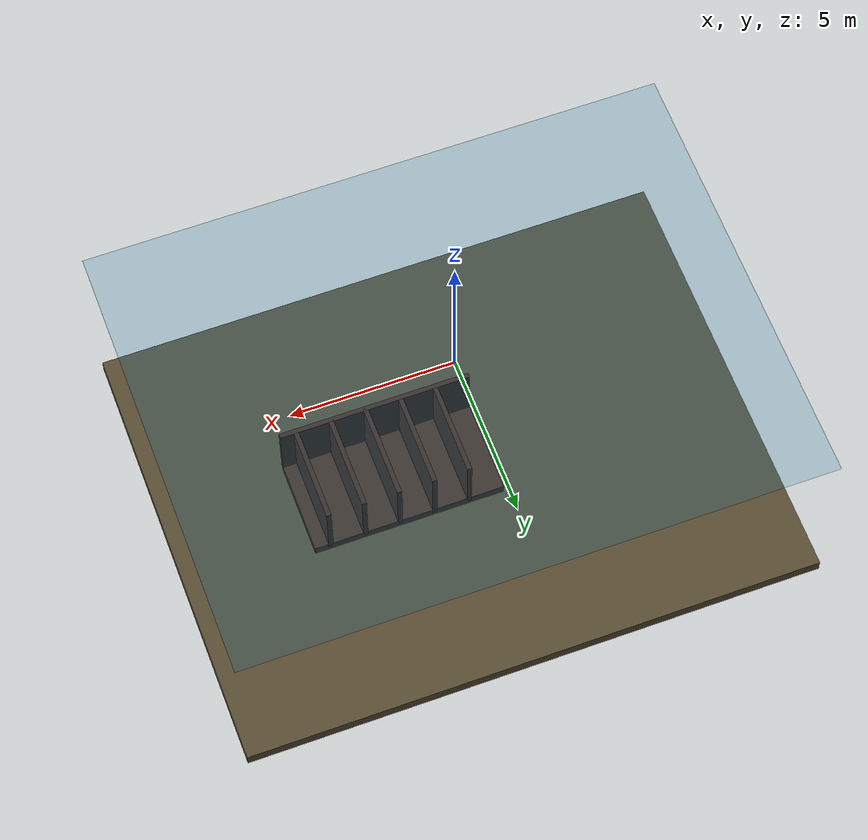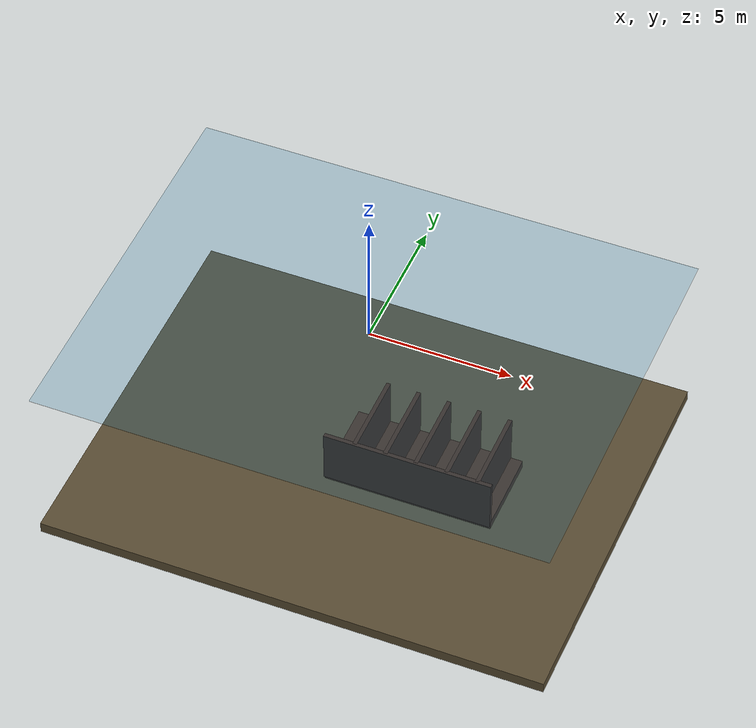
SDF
<?xml version='1.0' encoding='utf-8'?>
<sdf version="1.7">
  <world name="marine_wreck">
    <physics name="marine_physics" type="ode">
      <max_step_size>0.001</max_step_size>
      <real_time_factor>1</real_time_factor>
    </physics>
    <gravity>0 0 -9.81</gravity>
    <plugin filename="ignition-gazebo-physics-system" name="ignition::gazebo::systems::Physics" />
    <plugin filename="ignition-gazebo-user-commands-system" name="ignition::gazebo::systems::UserCommands" />
    <plugin filename="ignition-gazebo-scene-broadcaster-system" name="ignition::gazebo::systems::SceneBroadcaster" />
    <plugin filename="ignition-gazebo-sensors-system" name="ignition::gazebo::systems::Sensors">
      <render_engine>ogre2</render_engine>
    </plugin>
    <plugin filename="ignition-gazebo-imu-system" name="ignition::gazebo::systems::Imu" />
    <plugin filename="ignition-gazebo-buoyancy-system" name="ignition::gazebo::systems::Buoyancy">
      <graded_buoyancy>
        <default_density>1025</default_density>
        <density_change>
          <above_depth>0</above_depth>
          <density>1.225</density>
        </density_change>
      </graded_buoyancy>
      <enable>lab_rov</enable>
    </plugin>
    <!-- Fortress uses the explicit marine_sensors.py DVL/pressure/sonar model. -->
    <scene>
      <ambient>.3 .55 .6 1</ambient>
      <background>.05 .18 .25 1</background>
    </scene>
    <light name="sun" type="directional">
      <pose>0 0 10 0 0 0</pose>
      <diffuse>.8 .9 1 1</diffuse>
      <direction>-.3 .2 -1</direction>
    </light>
    <model name="seafloor">
      <static>true</static>
      <pose>0 0 -6.2 0 0 0</pose>
      <link name="link">
        <visual name="visual">
          <geometry>
            <box>
              <size>18 14 0.4</size>
            </box>
          </geometry>
          <material>
            <ambient>.35 .3 .2 1</ambient>
            <diffuse>.35 .3 .2 1</diffuse>
          </material>
        </visual>
        <collision name="collision">
          <geometry>
            <box>
              <size>18 14 0.4</size>
            </box>
          </geometry>
        </collision>
      </link>
    </model>
    <model name="water_surface">
      <static>true</static>
      <pose>0 0 0 0 0 0</pose>
      <link name="link">
        <visual name="visual">
          <geometry>
            <box>
              <size>18 14 0.015</size>
            </box>
          </geometry>
          <material>
            <ambient>0 .4 .6 .18</ambient>
            <diffuse>0 .4 .6 .18</diffuse>
          </material>
        </visual>
      </link>
    </model>
    <model name="wreck_keel">
      <static>true</static>
      <pose>2 0 -5.8 0 0 0</pose>
      <link name="link">
        <visual name="visual">
          <geometry>
            <box>
              <size>6 3 0.3</size>
            </box>
          </geometry>
          <material>
            <ambient>.3 .17 .1 1</ambient>
            <diffuse>.3 .17 .1 1</diffuse>
          </material>
        </visual>
        <collision name="collision">
          <geometry>
            <box>
              <size>6 3 0.3</size>
            </box>
          </geometry>
        </collision>
      </link>
    </model>
    <model name="wreck_rib_0">
      <static>true</static>
      <pose>0.1 0 -4.8 0 0 0</pose>
      <link name="link">
        <visual name="visual">
          <geometry>
            <box>
              <size>0.15 3 2</size>
            </box>
          </geometry>
          <material>
            <ambient>.28 .15 .09 1</ambient>
            <diffuse>.28 .15 .09 1</diffuse>
          </material>
        </visual>
        <collision name="collision">
          <geometry>
            <box>
              <size>0.15 3 2</size>
            </box>
          </geometry>
        </collision>
      </link>
    </model>
    <model name="wreck_rib_1">
      <static>true</static>
      <pose>1.2000000000000002 0 -4.8 0 0 0</pose>
      <link name="link">
        <visual name="visual">
          <geometry>
            <box>
              <size>0.15 3 2</size>
            </box>
          </geometry>
          <material>
            <ambient>.28 .15 .09 1</ambient>
            <diffuse>.28 .15 .09 1</diffuse>
          </material>
        </visual>
        <collision name="collision">
          <geometry>
            <box>
              <size>0.15 3 2</size>
            </box>
          </geometry>
        </collision>
      </link>
    </model>
    <model name="wreck_rib_2">
      <static>true</static>
      <pose>2.3000000000000003 0 -4.8 0 0 0</pose>
      <link name="link">
        <visual name="visual">
          <geometry>
            <box>
              <size>0.15 3 2</size>
            </box>
          </geometry>
          <material>
            <ambient>.28 .15 .09 1</ambient>
            <diffuse>.28 .15 .09 1</diffuse>
          </material>
        </visual>
        <collision name="collision">
          <geometry>
            <box>
              <size>0.15 3 2</size>
            </box>
          </geometry>
        </collision>
      </link>
    </model>
    <model name="wreck_rib_3">
      <static>true</static>
      <pose>3.4000000000000004 0 -4.8 0 0 0</pose>
      <link name="link">
        <visual name="visual">
          <geometry>
            <box>
              <size>0.15 3 2</size>
            </box>
          </geometry>
          <material>
            <ambient>.28 .15 .09 1</ambient>
            <diffuse>.28 .15 .09 1</diffuse>
          </material>
        </visual>
        <collision name="collision">
          <geometry>
            <box>
              <size>0.15 3 2</size>
            </box>
          </geometry>
        </collision>
      </link>
    </model>
    <model name="wreck_rib_4">
      <static>true</static>
      <pose>4.5 0 -4.8 0 0 0</pose>
      <link name="link">
        <visual name="visual">
          <geometry>
            <box>
              <size>0.15 3 2</size>
            </box>
          </geometry>
          <material>
            <ambient>.28 .15 .09 1</ambient>
            <diffuse>.28 .15 .09 1</diffuse>
          </material>
        </visual>
        <collision name="collision">
          <geometry>
            <box>
              <size>0.15 3 2</size>
            </box>
          </geometry>
        </collision>
      </link>
    </model>
    <model name="wreck_side">
      <static>true</static>
      <pose>2 -1.5 -4.8 0 0 0</pose>
      <link name="link">
        <visual name="visual">
          <geometry>
            <box>
              <size>6 0.15 2</size>
            </box>
          </geometry>
          <material>
            <ambient>.28 .15 .09 1</ambient>
            <diffuse>.28 .15 .09 1</diffuse>
          </material>
        </visual>
        <collision name="collision">
          <geometry>
            <box>
              <size>6 0.15 2</size>
            </box>
          </geometry>
        </collision>
      </link>
    </model>
  </world>
</sdf>
